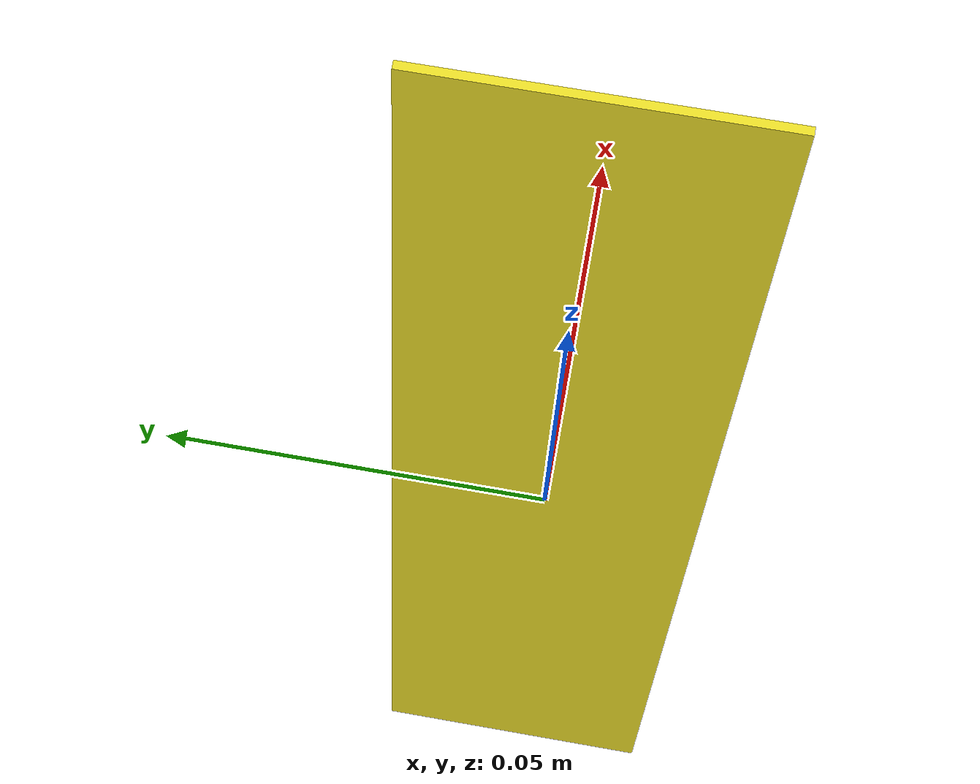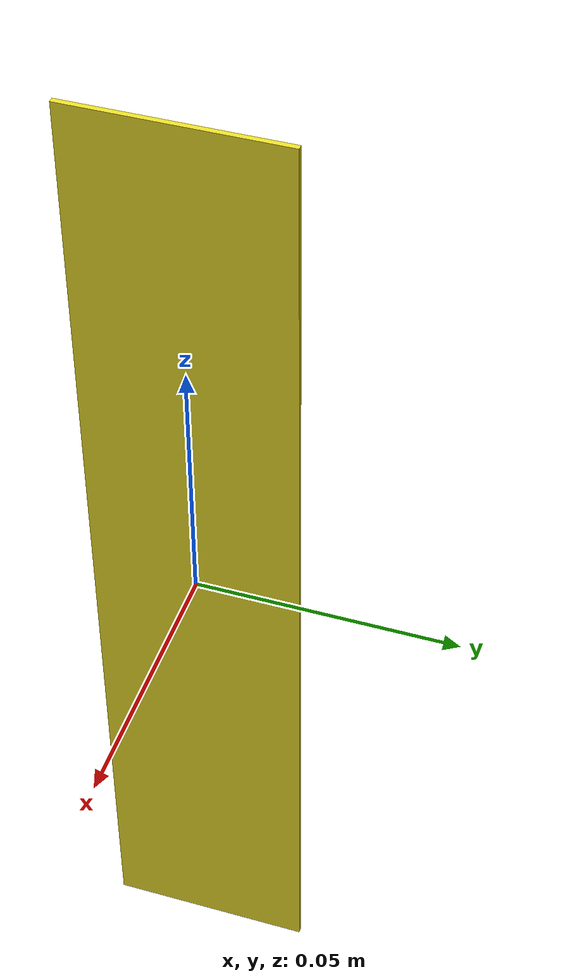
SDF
<!--
Copyright 2021 RUVU Robotics B.V.
-->

<sdf version="1.4">
  <model name="reflector">
    <pose>0 0 0 0 0 0</pose>
    <static>true</static>
    <link name="link">
      <inertial>
        <mass>0.01</mass>
        <inertia>
          <ixx>0.001</ixx>
          <ixy>0.0</ixy>
          <ixz>0.0</ixz>
          <iyy>0.001</iyy>
          <iyz>0.0</iyz>
          <izz>0.001</izz>
        </inertia>
      </inertial>
      <collision name="collision">
        <geometry>
          <box>
            <size>0.001 0.04 0.2</size>
          </box>
        </geometry>
        <laser_retro>20000</laser_retro>
      </collision>
      <visual name="visual">
        <geometry>
          <box>
            <size>0.001 0.04 0.2</size>
          </box>
        </geometry>
        <material>
          <script>
            <name>Gazebo/YellowGlow</name>
          </script>
        </material>
      </visual>
    </link>
  </model>
</sdf>
